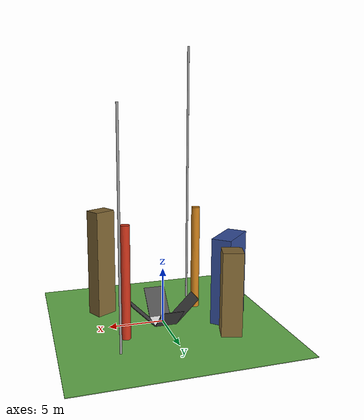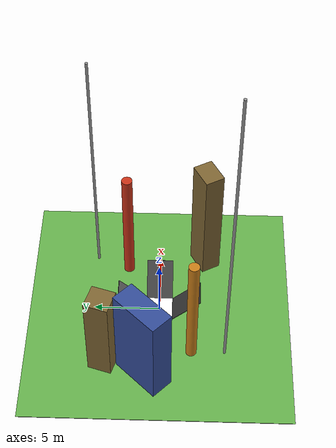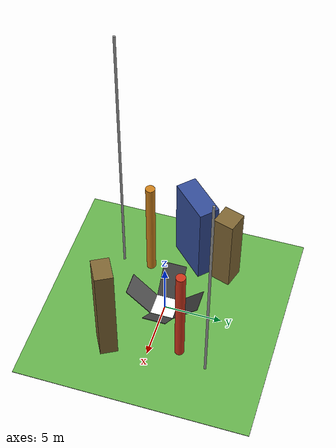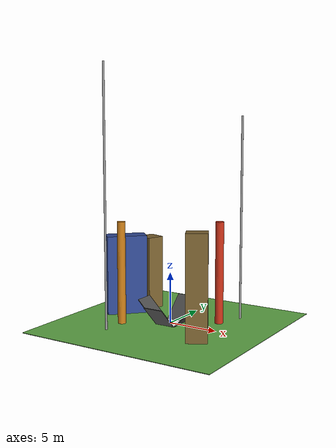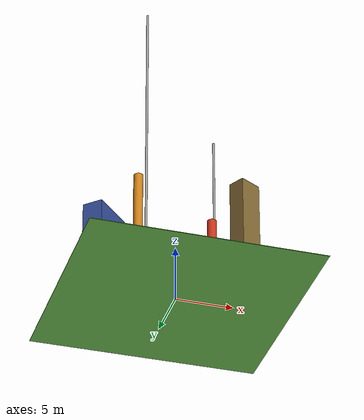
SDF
<?xml version="1.0" ?>
<sdf version="1.9">
  <model name="qr_engelli">
    <static>true</static>

    <link name="ground">
      <visual name="visual">
        <geometry><box><size>20 20 0.05</size></box></geometry>
        <material>
          <ambient>0.4 0.7 0.3 1</ambient>
          <diffuse>0.4 0.7 0.3 1</diffuse>
        </material>
      </visual>
    </link>

    <link name="link">
      <pose>0 0 0.06 0 0 0</pose>
      <visual name="visual">
        <geometry>
          <plane>
            <normal>0 0 1</normal>
            <size>2 2</size>
          </plane>
        </geometry>
        <material>
          <diffuse>1 1 1 1</diffuse>
          <specular>0 0 0 1</specular>
          <pbr>
            <metal>
              <albedo_map>materials/textures/qr_code.png</albedo_map>
            </metal>
          </pbr>
        </material>
      </visual>
    </link>

    <!-- Varil 1 - 10m yüksek -->
    <link name="barrel1">
      <pose>4 2.5 5.0 0 0 0</pose>
      <visual name="visual">
        <geometry><cylinder><radius>0.4</radius><length>10.0</length></cylinder></geometry>
        <material><ambient>0.8 0.2 0.1 1</ambient><diffuse>0.8 0.2 0.1 1</diffuse></material>
      </visual>
    </link>

    <!-- Varil 2 - 10m yüksek -->
    <link name="barrel2">
      <pose>-4 -2.5 5.0 0 0 0</pose>
      <visual name="visual">
        <geometry><cylinder><radius>0.4</radius><length>10.0</length></cylinder></geometry>
        <material><ambient>0.8 0.5 0.1 1</ambient><diffuse>0.8 0.5 0.1 1</diffuse></material>
      </visual>
    </link>

    <!-- Kasa 1 - 10m yüksek -->
    <link name="box1">
      <pose>5 -3.5 5.0 0 0 0.5</pose>
      <visual name="visual">
        <geometry><box><size>2.0 1.5 10.0</size></box></geometry>
        <material><ambient>0.5 0.4 0.2 1</ambient><diffuse>0.5 0.4 0.2 1</diffuse></material>
      </visual>
    </link>

    <!-- Kasa 2 - 7.5m yüksek -->
    <link name="box2">
      <pose>-5 4 3.75 0 0 -0.3</pose>
      <visual name="visual">
        <geometry><box><size>1.8 1.8 7.5</size></box></geometry>
        <material><ambient>0.5 0.4 0.2 1</ambient><diffuse>0.5 0.4 0.2 1</diffuse></material>
      </visual>
    </link>

    <!-- Direk 1 - 25m -->
    <link name="pole1">
      <pose>-4 -5 12.5 0 0 0</pose>
      <visual name="visual">
        <geometry><cylinder><radius>0.1</radius><length>25.0</length></cylinder></geometry>
        <material><ambient>0.6 0.6 0.6 1</ambient><diffuse>0.6 0.6 0.6 1</diffuse></material>
      </visual>
    </link>

    <!-- Direk 2 - 20m -->
    <link name="pole2">
      <pose>5 5 10.0 0 0 0</pose>
      <visual name="visual">
        <geometry><cylinder><radius>0.1</radius><length>20.0</length></cylinder></geometry>
        <material><ambient>0.6 0.6 0.6 1</ambient><diffuse>0.6 0.6 0.6 1</diffuse></material>
      </visual>
    </link>

    <!-- Araç - 8m yüksek -->
    <link name="vehicle">
      <pose>-6 1 4.0 0 0 0.8</pose>
      <visual name="visual">
        <geometry><box><size>4.0 1.8 8.0</size></box></geometry>
        <material><ambient>0.2 0.3 0.6 1</ambient><diffuse>0.2 0.3 0.6 1</diffuse></material>
      </visual>
    </link>

    <link name="plate_north">
      <pose>0 2.0606 1.0606 -0.785398 0 0</pose>
      <visual name="visual">
        <geometry><box><size>2 0.05 3</size></box></geometry>
        <material><ambient>0.3 0.3 0.3 1</ambient><diffuse>0.3 0.3 0.3 1</diffuse></material>
      </visual>
    </link>
    <link name="plate_south">
      <pose>0 -2.0606 1.0606 0.785398 0 0</pose>
      <visual name="visual">
        <geometry><box><size>2 0.05 3</size></box></geometry>
        <material><ambient>0.3 0.3 0.3 1</ambient><diffuse>0.3 0.3 0.3 1</diffuse></material>
      </visual>
    </link>
    <link name="plate_east">
      <pose>2.0606 0 1.0606 0 0.785398 0</pose>
      <visual name="visual">
        <geometry><box><size>0.05 2 3</size></box></geometry>
        <material><ambient>0.3 0.3 0.3 1</ambient><diffuse>0.3 0.3 0.3 1</diffuse></material>
      </visual>
    </link>
    <link name="plate_west">
      <pose>-2.0606 0 1.0606 0 -0.785398 0</pose>
      <visual name="visual">
        <geometry><box><size>0.05 2 3</size></box></geometry>
        <material><ambient>0.3 0.3 0.3 1</ambient><diffuse>0.3 0.3 0.3 1</diffuse></material>
      </visual>
    </link>

  </model>
</sdf>
